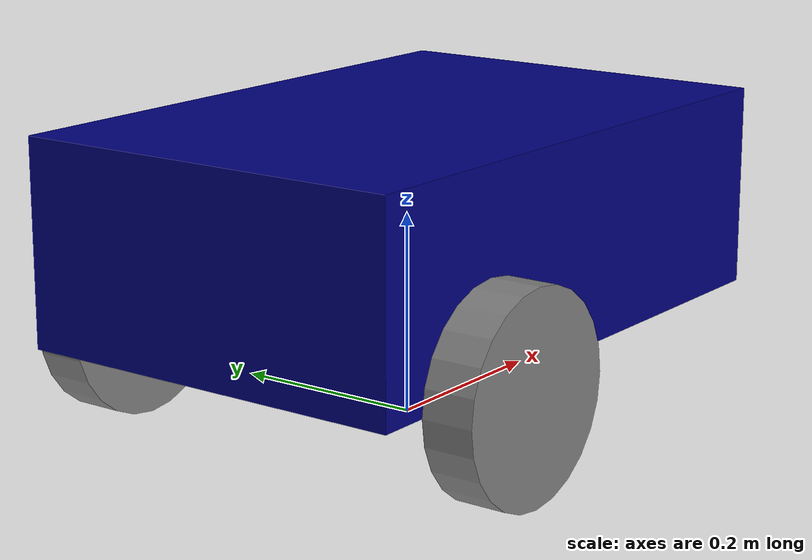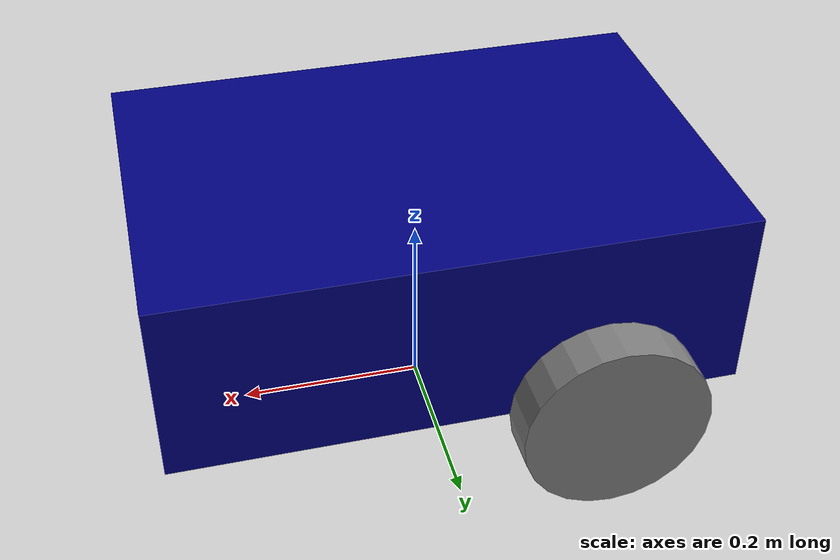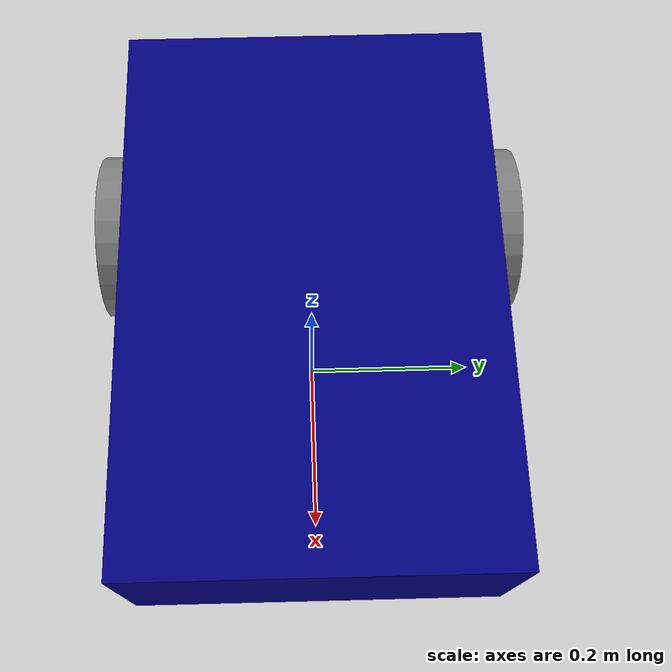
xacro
<?xml version="1.0"?>
<robot name="my_robot" xmlns:xacro="http://www.ros.org/wiki/xacro">

    <xacro:include filename="common_properties.xacro" />
    <xacro:include filename="mobile_base.xacro" />
    <xacro:include filename="mobile_base_gazebo.xacro" />

    <xacro:include filename="camera.xacro" />

</robot>

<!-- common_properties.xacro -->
<robot xmlns:xacro="http://www.ros.org/wiki/xacro">

    <material name="green">
        <color rgba="0 0.5 0 1" />
    </material>

    <material name="blue">
        <color rgba="0 0 0.5 1" />
    </material>

    <material name="grey">
        <color rgba="0.5 0.5 0.5 1" />
    </material>

    <xacro:macro name="box_inertia" params="m l w h xyz rpy">
        <inertial>
            <origin xyz="${xyz}" rpy="${rpy}" />
            <mass value="${m}"/>
            <inertia ixx="${(m/12) * (h*h + l*l)}" ixy="0.0" ixz="0.0"
                     iyy="${(m/12) * (w*w + l*l)}" iyz="0.0"
                     izz="${(m/12) * (w*w + h*h)}"/>
        </inertial>
    </xacro:macro>

    <xacro:macro name="cylinder_inertia" params="m r h xyz rpy">
        <inertial>
            <origin xyz="${xyz}" rpy="${rpy}" />
            <mass value="${m}"/>
            <inertia ixx="${(m/12) * (h*h + 3*r*r)}" ixy="0.0" ixz="0.0"
                     iyy="${(m/12) * (h*h + 3*r*r)}" iyz="0.0"
                     izz="${(m/2) * (r*r)}"/>
        </inertial>
    </xacro:macro>

    <xacro:macro name="sphere_inertia" params="m r xyz rpy">
        <inertial>
            <origin xyz="${xyz}" rpy="${rpy}" />
            <mass value="${m}"/>
            <inertia ixx="${(2*m/5) * r*r}" ixy="0.0" ixz="0.0"
                     iyy="${(2*m/5) * r*r}" iyz="0.0"
                     izz="${(2*m/5) * r*r}"/>
        </inertial>
    </xacro:macro>
</robot>

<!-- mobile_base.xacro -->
<robot xmlns:xacro="http://www.ros.org/wiki/xacro">
    <xacro:property name="base_length" value="0.6" />
    <xacro:property name="base_width" value="0.4" />
    <xacro:property name="base_height" value="0.2" />

    <xacro:property name="wheel_radius" value="0.1" />
    <xacro:property name="wheel_length" value="0.05" />

    <xacro:property name="box_mass" value="8.0" />
    <xacro:property name="wheel_mass" value="4.0" />
    <xacro:property name="caster_wheel_mass" value="1.0" />

    <link name="base_footprint">
    </link>

    <link name="base_link">
        <visual>
            <geometry>
                <box size="${base_length} ${base_width} ${base_height}" />
            </geometry>
            <origin xyz="0 0 ${base_height / 2.0}" rpy="0 0 0" />
            <material name="blue" />
        </visual>
        <collision>
            <geometry>
                <box size="${base_length} ${base_width} ${base_height}" />
            </geometry>
            <origin xyz="0 0 ${base_height / 2.0}" rpy="0 0 0" />
        </collision>
        <xacro:box_inertia m="${box_mass}" l="${base_length}" w="${base_width}" h="${base_height}"
            xyz="0 0 ${base_height /2.0}" rpy="0 0 0" />
    </link>

    <xacro:macro name="wheel_link" params="prefix">
        <link name="${prefix}_wheel_link">
            <visual>
                <geometry>
                    <cylinder radius="${wheel_radius}" length="${wheel_length}" />
                </geometry>
                <origin xyz="0 0 0" rpy="${pi / 2.0} 0 0" />
                <material name="grey" />
            </visual>
            <collision>
                <geometry>
                    <cylinder radius="${wheel_radius}" length="${wheel_length}" />
                </geometry>
                <origin xyz="0 0 0" rpy="${pi / 2.0} 0 0" />
            </collision>
            <xacro:cylinder_inertia m="${wheel_mass}" r="${wheel_radius}" h="${wheel_length}"
                xyz="0 0 0" rpy="${pi / 2.0} 0 0" />
        </link>
    </xacro:macro>

    <xacro:wheel_link prefix="right" />
    <xacro:wheel_link prefix="left" />

    <link name="caster_wheel_link">
        <visual>
            <geometry>
                <sphere radius="${wheel_radius / 2.0}" />
            </geometry>
            <origin xyz="0 0 0" rpy="0 0 0" />
            <material name="grey" />
        </visual>
        <collision>
            <geometry>
                <sphere radius="${wheel_radius / 2.0}" />
            </geometry>
            <origin xyz="0 0 0" rpy="0 0 0" />
        </collision>
        <xacro:sphere_inertia m="${caster_wheel_mass}" r="${wheel_radius / 2.0}"
            xyz="0 0 0" rpy="0 0 0" />
    </link>

    <joint name="base_right_wheel_joint" type="continuous">
        <parent link="base_link" />
        <child link="right_wheel_link" />
        <origin xyz="-${base_length / 4.0} ${base_width /2.0 + wheel_length/2.0} 0" rpy="0 0 0" />
        <axis xyz="0 1 0" />
    </joint>

    <joint name="base_left_wheel_joint" type="continuous">
        <parent link="base_link" />
        <child link="left_wheel_link" />
        <origin xyz="-${base_length / 4.0} -${base_width / 2.0 + wheel_length/2.0} 0" rpy="0 0 0" />
        <axis xyz="0 1 0" />
    </joint>

    <joint name="base_caster_wheel_joint" type="fixed">
        <parent link="base_link" />
        <child link="caster_wheel_link" />
        <origin xyz="${base_length / 3.0} 0 -${wheel_radius / 2.0}" rpy="0 0 0" />
    </joint>

    <joint name="base_joint" type="fixed">
        <parent link="base_footprint" />
        <child link="base_link" />
        <origin xyz="0 0 ${wheel_radius}" rpy="0 0 0" />
    </joint>
</robot>

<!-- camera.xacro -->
<robot xmlns:xacro="http://www.ros.org/wiki/xacro">

    <xacro:property name="camera_length" value="0.01" />
    <xacro:property name="camera_width" value="0.1" />
    <xacro:property name="camera_height" value="0.05" />
    <xacro:property name="camera_mass" value="0.1" />

    <link name="camera_link">
        <visual>
            <geometry>
                <box size="${camera_length} ${camera_width} ${camera_height}" />
            </geometry>
            <material name="grey" />
        </visual>
        <collision>
            <geometry>
                <box size="${camera_length} ${camera_width} ${camera_height}" />
            </geometry>
        </collision>
    </link>

    <joint name="base_camera_joint" type="fixed">
        <parent link="base_link" />
        <child link="camera_link" />
        <orgin xyz="0.3 0 ${(base_length + camera_length)/2.0}" rpy="0 0 0" />
    </joint>
</robot>
